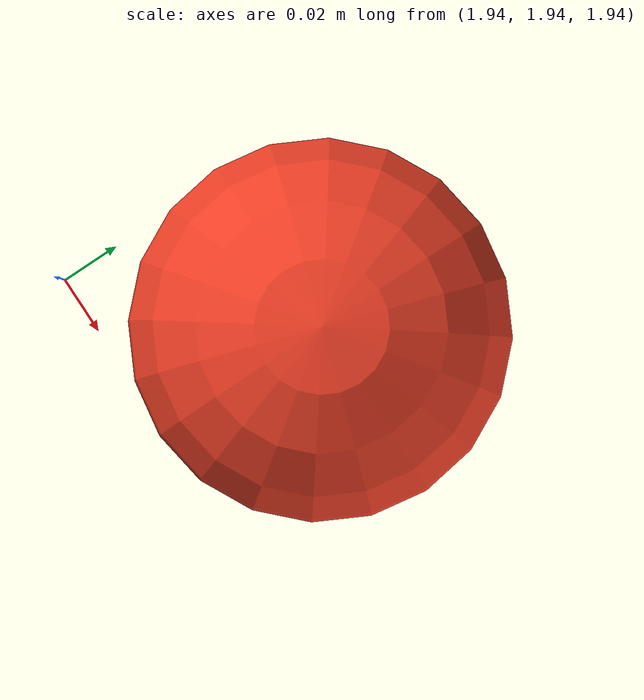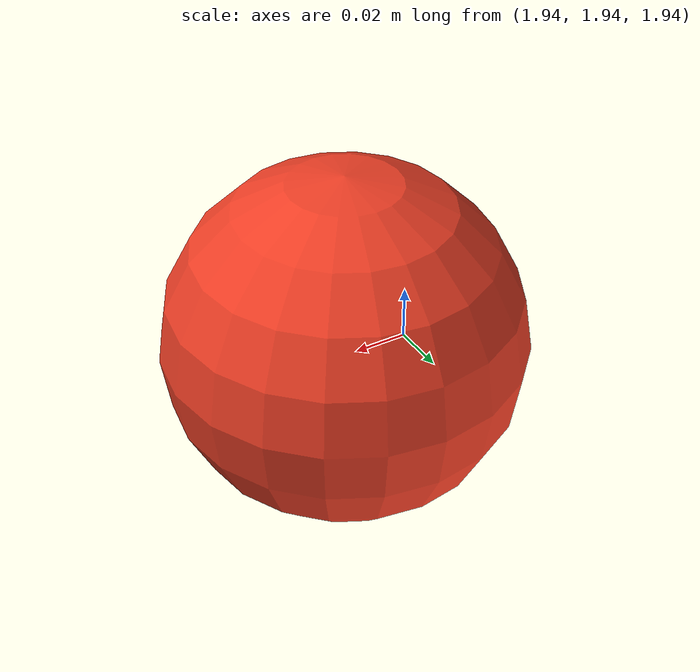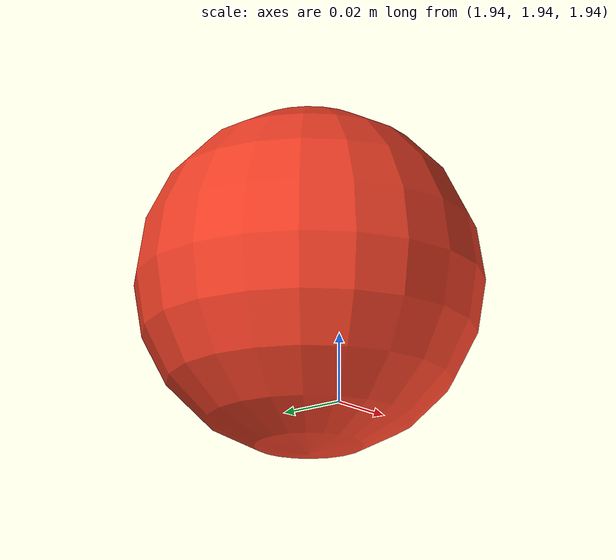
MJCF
<mujoco model="ur5e">
  <compiler angle="radian" meshdir="assets" autolimits="true" />

  <option integrator="implicitfast" />

  <default>
    <default class="ur5e">
      <material specular="0.5" shininess="0.25" />
      <joint axis="0 1 0" range="-6.28319 6.28319" armature="0.1" />
      <general gaintype="fixed" biastype="affine" ctrlrange="-6.2831 6.2831" gainprm="2000" biasprm="0 -2000 -400" forcerange="-150 150" />
      <default class="size3">
        <default class="size3_limited">
          <joint range="-3.1415 3.1415" />
          <general ctrlrange="-3.1415 3.1415" />
        </default>
      </default>
      <default class="size1">
        <general gainprm="500" biasprm="0 -500 -100" forcerange="-28 28" />
      </default>
      <default class="visual">
        <geom type="mesh" contype="0" conaffinity="0" group="2" />
      </default>
      <default class="collision">
        <geom type="capsule" group="3" />
        <default class="eef_collision">
          <geom type="cylinder" />
        </default>
      </default>
      <site size="0.001" rgba="0.5 0.5 0.5 0.3" group="4" />
    </default>
  </default>

  <asset>
    <material class="ur5e" name="black" rgba="0.033 0.033 0.033 1" />
    <material class="ur5e" name="jointgray" rgba="0.278 0.278 0.278 1" />
    <material class="ur5e" name="linkgray" rgba="0.82 0.82 0.82 1" />
    <material class="ur5e" name="urblue" rgba="0.49 0.678 0.8 1" />

    </asset>

  <worldbody>
    <light name="spotlight" mode="targetbodycom" target="wrist_2_link" pos="0 -1 2" />
    <body name="base" quat="0 0 0 -1" childclass="ur5e">
      <inertial mass="4.0" pos="0 0 0" diaginertia="0.00443333156 0.00443333156 0.0072" />
      <body name="shoulder_link" pos="0 0 0.163">
        <inertial mass="3.7" pos="0 0 0" diaginertia="0.0102675 0.0102675 0.00666" />
        <joint name="shoulder_pan_joint" class="size3" axis="0 0 1" />
        <geom class="collision" size="0.06 0.06" pos="0 0 -0.04" name="audit_robot_0" />
        <body name="upper_arm_link" pos="0 0.138 0" quat="1 0 1 0">
          <inertial mass="8.393" pos="0 0 0.2125" diaginertia="0.133886 0.133886 0.0151074" />
          <joint name="shoulder_lift_joint" class="size3" />
          <geom class="collision" pos="0 -0.04 0" quat="1 1 0 0" size="0.06 0.06" name="audit_robot_1" />
          <geom class="collision" size="0.05 0.2" pos="0 0 0.2" name="audit_robot_2" />
          <body name="forearm_link" pos="0 -0.131 0.425">
            <inertial mass="2.275" pos="0 0 0.196" diaginertia="0.0311796 0.0311796 0.004095" />
            <joint name="elbow_joint" class="size3_limited" />
            <geom class="collision" pos="0 0.08 0" quat="1 1 0 0" size="0.055 0.06" name="audit_robot_3" />
            <geom class="collision" size="0.038 0.19" pos="0 0 0.2" name="audit_robot_4" />
            <body name="wrist_1_link" pos="0 0 0.392" quat="1 0 1 0">
              <inertial mass="1.219" pos="0 0.127 0" diaginertia="0.0025599 0.0025599 0.0021942" />
              <joint name="wrist_1_joint" class="size1" />
              <geom class="collision" pos="0 0.05 0" quat="1 1 0 0" size="0.04 0.07" name="audit_robot_5" />
              <body name="wrist_2_link" pos="0 0.127 0">
                <inertial mass="1.219" pos="0 0 0.1" diaginertia="0.0025599 0.0025599 0.0021942" />
                <joint name="wrist_2_joint" axis="0 0 1" class="size1" />
                <geom class="collision" size="0.04 0.06" pos="0 0 0.04" name="audit_robot_6" />
                <geom class="collision" pos="0 0.02 0.1" quat="1 1 0 0" size="0.04 0.04" name="audit_robot_7" />
                <body name="wrist_3_link" pos="0 0 0.1">
                  <inertial mass="0.1889" pos="0 0.0771683 0" quat="1 0 0 1" diaginertia="0.000132134 9.90863e-05 9.90863e-05" />
                  <joint name="wrist_3_joint" class="size1" />
                  <geom class="eef_collision" pos="0 0.08 0" quat="1 1 0 0" size="0.04 0.02" name="audit_robot_8" />
                  <site name="attachment_site" pos="0 0.1 0" quat="-1 1 0 0" />
                </body>
              </body>
            </body>
          </body>
        </body>
      </body>
    </body>
  <body name="audit_obstacle_0" mocap="true" pos="2 2 2"><geom name="audit_sphere_0" type="sphere" size="0.055" rgba=".95 .25 .15 1" /></body><body name="audit_obstacle_1" mocap="true" pos="2 2 2"><geom name="audit_sphere_1" type="sphere" size="0.055" rgba=".95 .25 .15 1" /></body><body name="audit_obstacle_2" mocap="true" pos="2 2 2"><geom name="audit_sphere_2" type="sphere" size="0.055" rgba=".95 .25 .15 1" /></body><body name="audit_obstacle_3" mocap="true" pos="2 2 2"><geom name="audit_sphere_3" type="sphere" size="0.055" rgba=".95 .25 .15 1" /></body></worldbody>

  <actuator>
    <general class="size3" name="shoulder_pan" joint="shoulder_pan_joint" />
    <general class="size3" name="shoulder_lift" joint="shoulder_lift_joint" />
    <general class="size3_limited" name="elbow" joint="elbow_joint" />
    <general class="size1" name="wrist_1" joint="wrist_1_joint" />
    <general class="size1" name="wrist_2" joint="wrist_2_joint" />
    <general class="size1" name="wrist_3" joint="wrist_3_joint" />
  </actuator>

  <keyframe>
    <key name="home" qpos="-1.5708 -1.5708 1.5708 -1.5708 -1.5708 0" ctrl="-1.5708 -1.5708 1.5708 -1.5708 -1.5708 0" />
  </keyframe>
</mujoco>
